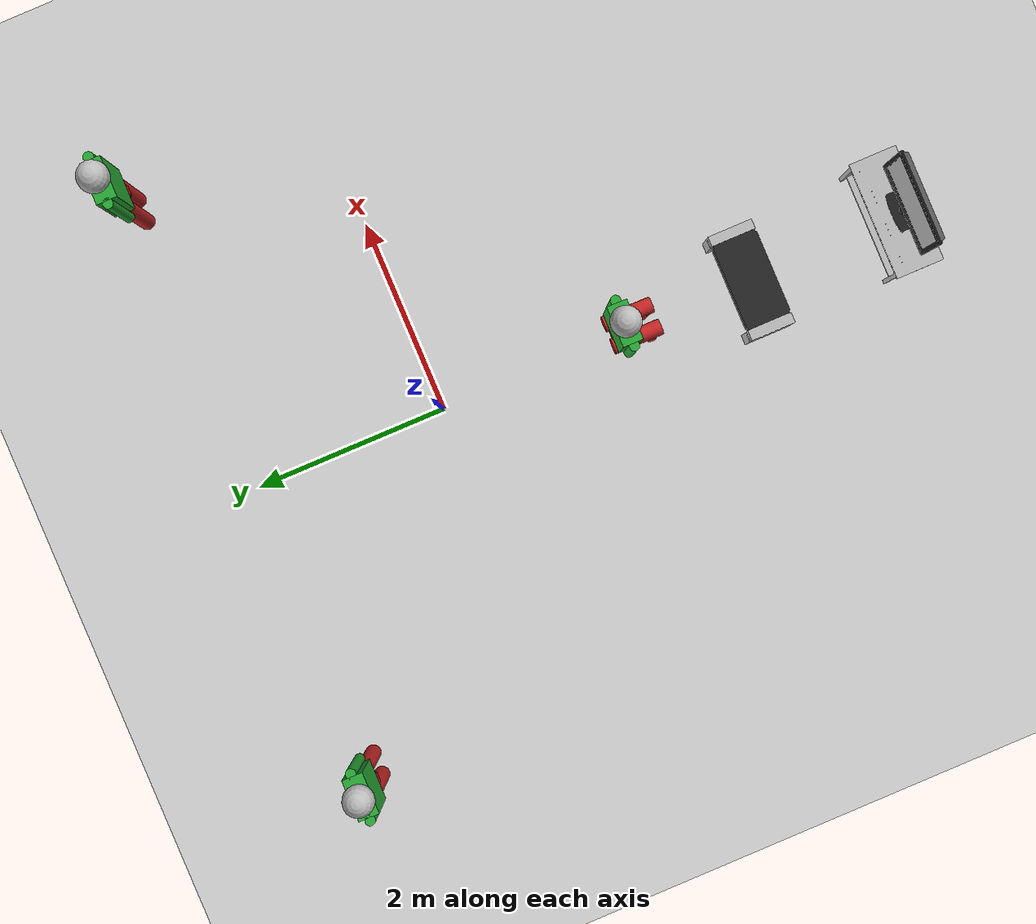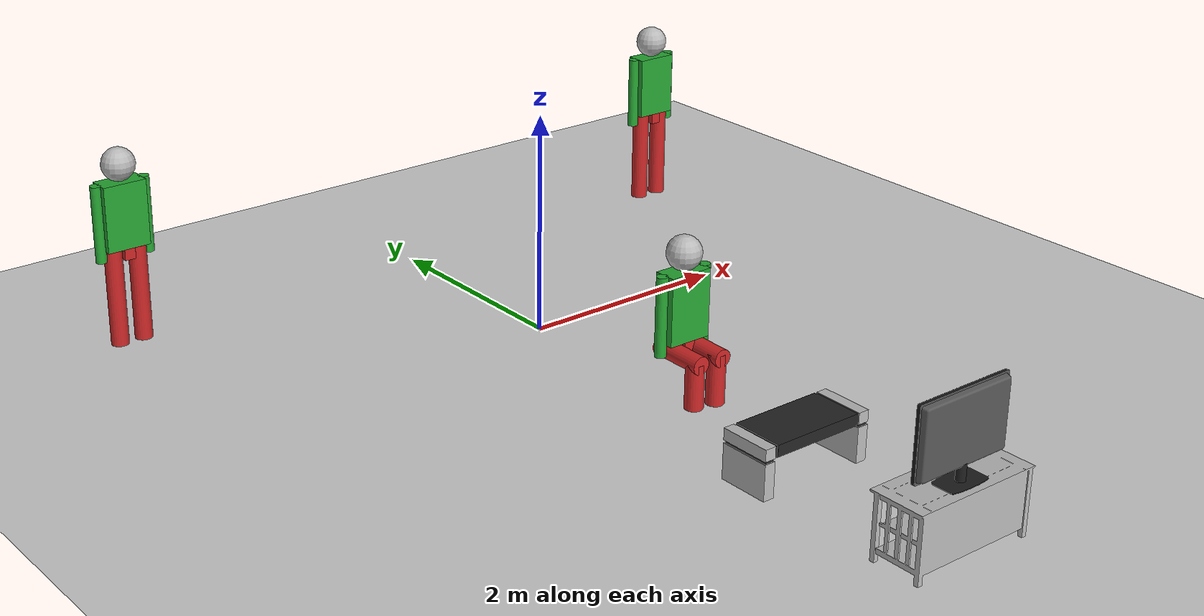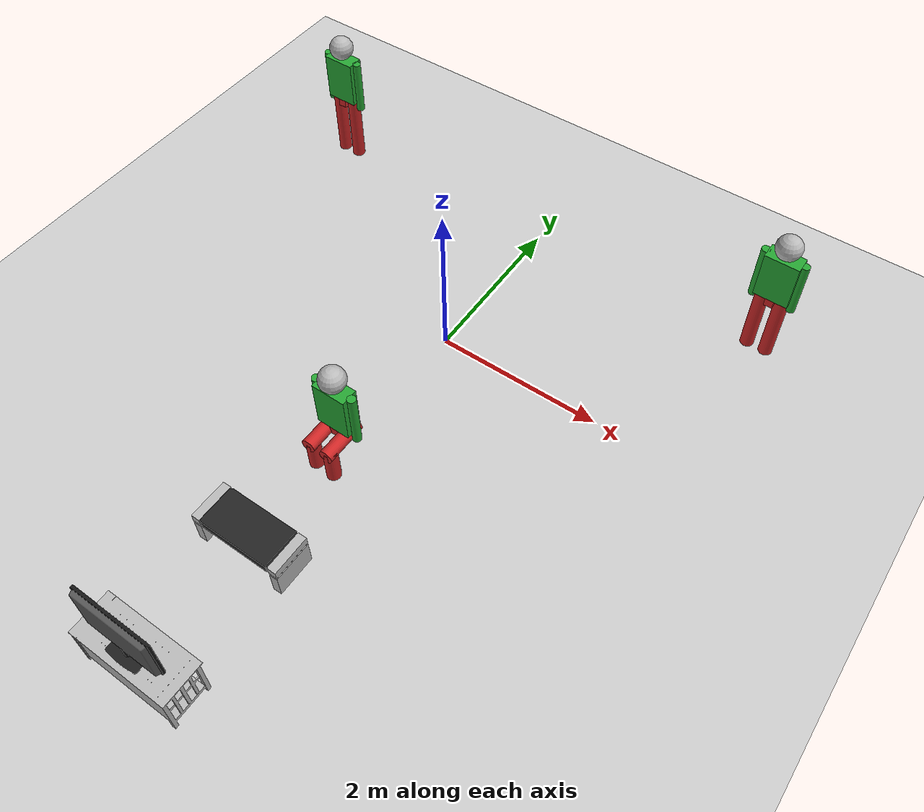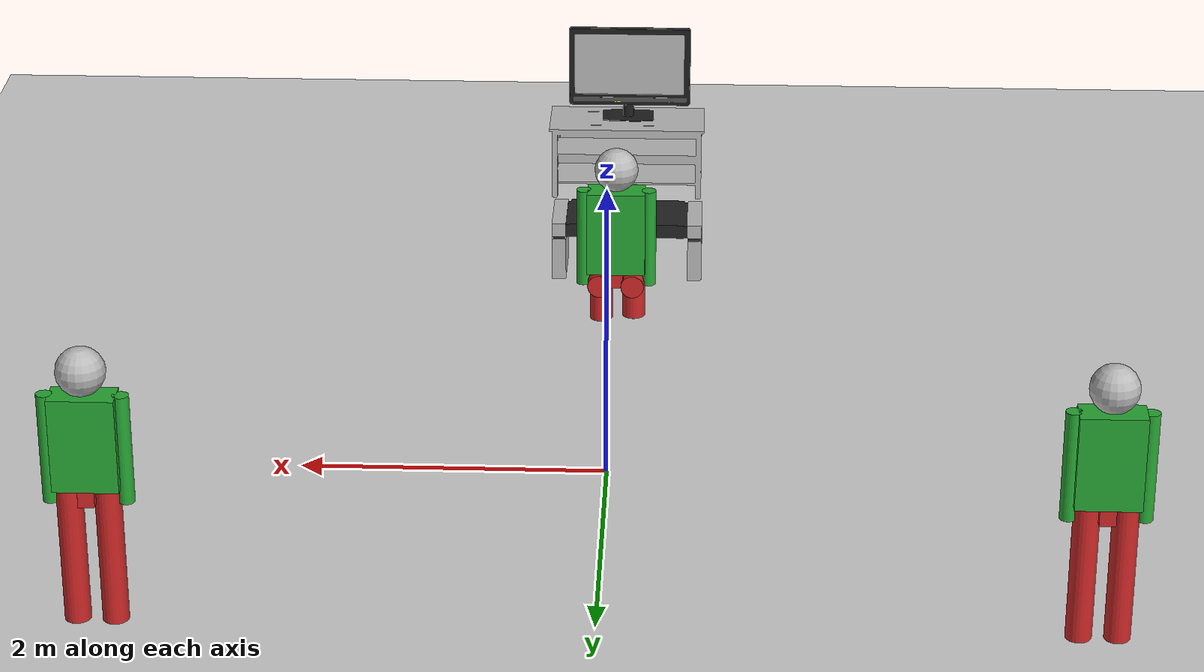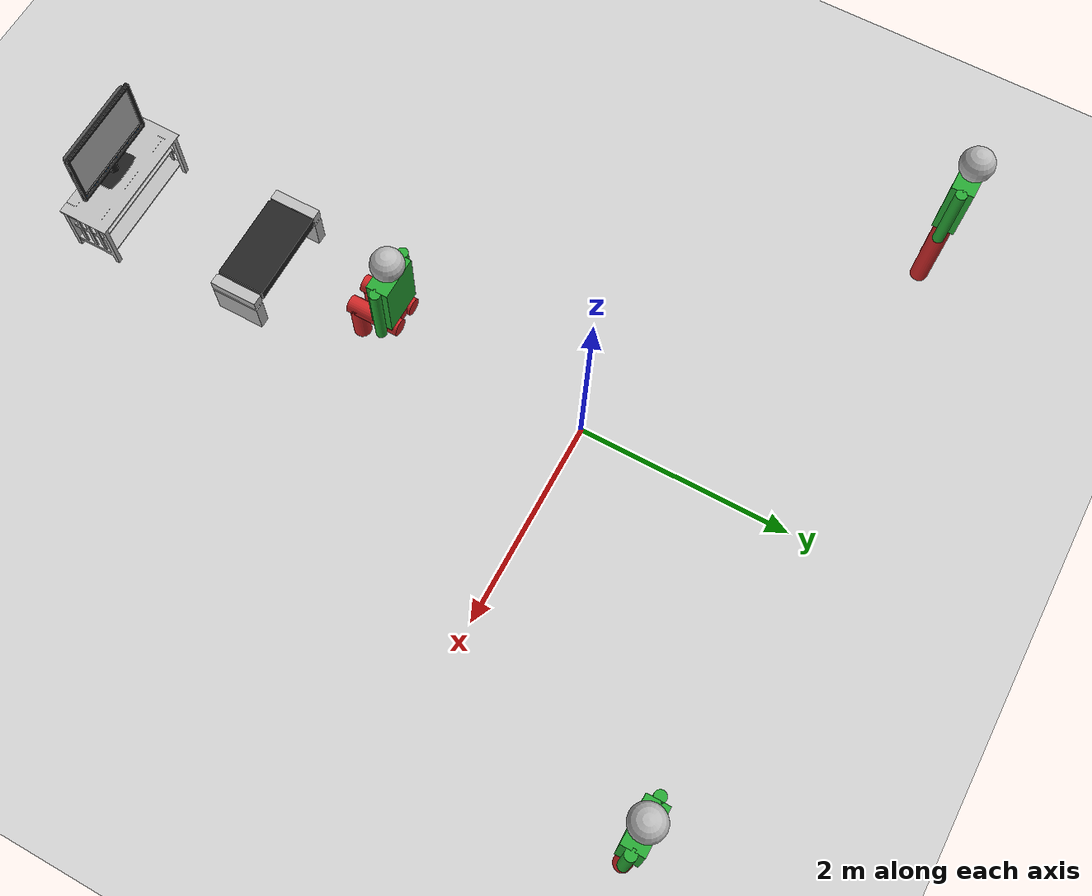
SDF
<sdf version="1.4">
 <world name="default">
  <include><uri>model://ground_plane</uri></include>
  <include><uri>model://sun</uri></include>
  <include>
   <pose>-3 2 0 0 0 -1.5757</pose>
   <uri>model://actor</uri>
   <name>Ze</name>
   <plugin name="ze_control" filename="libze_control_lib.so"/>
  </include>
  <include>
   <pose>3 2 0 0 0 -1.5757</pose>
   <uri>model://actor</uri>
   <name>Manel</name>
   <plugin name="manel_control" filename="libmanel_control_lib.so"/>
  </include>
  <include><pose>0 -1.87 0.2 0 0 -1.5757</pose><uri>model://actor_siting</uri><name>Quim</name></include>
  <include><pose>0 -4.78 0 0 0 0</pose><uri>model://tv</uri></include>
  <include><pose>0 -3.25 0 0 0 0</pose><uri>model://coffee_table</uri></include>
 </world>
</sdf>

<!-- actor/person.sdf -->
<sdf version='1.4'>
  <model name="person">
    <static>false</static>
    <link name="person">
      <visual name="torso_top">
	<pose>0 0 1.2 0 0 0</pose>
	<geometry>
	  <box>
	    <size>0.2 0.4 0.6</size>
	  </box>
	</geometry>
	<material>
          <script>
            <uri>file://media/materials/scripts/gazebo.material</uri>
            <name>Gazebo/Green</name>
          </script>
        </material>
      </visual>
      <visual name="torso_bottom">
	<pose>0 0 0.85 0 0 0</pose>
	<geometry>
	  <box>
	    <size>0.2 0.1 0.1</size>
	  </box>
	</geometry>
	<material>
          <script>
            <uri>file://media/materials/scripts/gazebo.material</uri>
            <name>Gazebo/Red</name>
          </script>
        </material>
      </visual>
      <collision name="torso_top">
	<pose>0 0 1.2 0 0 0</pose>
	<geometry>
	  <box>
	    <size>0.2 0.4 0.6</size>
	  </box>
	</geometry>
      </collision>
      <collision name="torso_bottom">
	<pose>0 0 0.85 0 0 0</pose>
	<geometry>
	  <box>
	    <size>0.2 0.1 0.1</size>
	  </box>
	</geometry>
      </collision>

      <visual name="head">
	<pose>0 0 1.65 0 0 0</pose>
	<geometry>
	  <sphere>
	    <radius>0.15</radius>
	  </sphere>
	</geometry>
	<material>
          <script>
            <uri>file://media/materials/scripts/gazebo.material</uri>
	    <name>Gazebo/SmileyHappy</name>
          </script>
        </material>
      </visual>
      <collision name = "head">
	<pose>0 0 1.65 0 0 0</pose>
	<geometry>
	  <sphere>
	    <radius>0.15</radius>
	  </sphere>
	</geometry>
      </collision>

      <visual name="left_arm">
	<pose>0 0.225 1.15 0 0 0</pose>
	<geometry>
	  <cylinder>
	    <radius>0.05</radius>
	    <length>0.70</length>
	  </cylinder>
	</geometry>
	<material>
          <script>
            <uri>file://media/materials/scripts/gazebo.material</uri>
            <name>Gazebo/Green</name>
          </script>
        </material>
      </visual>
      <collision name="left_arm">
	<pose>0 0.225 1.15 0 0 0</pose>
	<geometry>
	  <cylinder>
	    <radius>0.05</radius>
	    <length>0.70</length>
	  </cylinder>
	</geometry>
      </collision>

      <visual name ="right_arm">
	<pose>0 -0.225 1.15 0 0 0</pose>
	<geometry>
	  <cylinder>
	    <radius>0.05</radius>
	    <length>0.70</length>
	  </cylinder>
	</geometry>
	<material>
          <script>
            <uri>file://media/materials/scripts/gazebo.material</uri>
            <name>Gazebo/Green</name>
          </script>
        </material>
      </visual>
      <collision name ="right_arm">
	<pose>0 -0.225 1.15 0 0 0</pose>
	<geometry>
	  <cylinder>
	    <radius>0.05</radius>
	    <length>0.70</length>
	  </cylinder>
	</geometry>
      </collision>

      <visual name ="left_leg">
	<pose>0 0.115 0.445 0 0 0</pose>
	<geometry>
	  <cylinder>
	    <radius>0.08</radius>
	    <length>0.89</length>
	  </cylinder>
	</geometry>
	<material>
          <script>
            <uri>file://media/materials/scripts/gazebo.material</uri>
            <name>Gazebo/Red</name>
          </script>
        </material>
      </visual>
      <collision name ="left_leg">
	<pose>0 0.115 0.445 0 0 0</pose>
	<geometry>
	  <cylinder>
	    <radius>0.08</radius>
	    <length>0.89</length>
	  </cylinder>
	</geometry>
      </collision>

      <visual name="right_leg">
	<pose>0 -0.115 0.445 0 0 0</pose>
	<geometry>
	  <cylinder>
	    <radius>0.08</radius>
	    <length>0.89</length>
	  </cylinder>
	</geometry>
	<material>
          <script>
            <uri>file://media/materials/scripts/gazebo.material</uri>
            <name>Gazebo/Red</name>
          </script>
        </material>
      </visual>
      <collision name="right_leg">
	<pose>0 -0.115 0.445 0 0 0</pose>
	<geometry>
	  <cylinder>
	    <radius>0.08</radius>
	    <length>0.89</length>
	  </cylinder>
	</geometry>
      </collision>
    </link>
  </model>
</sdf>

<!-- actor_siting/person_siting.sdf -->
<sdf version='1.4'>
  <model name="person_siting">
    <static>true</static>
    <link name="person_siting">
      <visual name="torso_top">
	<pose>0 0 0.7 0 0 0</pose>
	<geometry>
	  <box>
	    <size>0.2 0.4 0.6</size>
	  </box>
	</geometry>
	<material>
          <script>
            <uri>file://media/materials/scripts/gazebo.material</uri>
            <name>Gazebo/Green</name>
          </script>
        </material>
      </visual>
      <visual name="torso_bottom">
	<pose>0 0 0.35 0 0 0</pose>
	<geometry>
	  <box>
	    <size>0.2 0.1 0.1</size>
	  </box>
	</geometry>
	<material>
          <script>
            <uri>file://media/materials/scripts/gazebo.material</uri>
            <name>Gazebo/Red</name>
          </script>
        </material>
      </visual>
      <collision name="torso_top">
	<pose>0 0 0.7 0 0 0</pose>
	<geometry>
	  <box>
	    <size>0.2 0.4 0.6</size>
	  </box>
	</geometry>
      </collision>
      <collision name="torso_bottom">
	<pose>0 0 0.35 0 0 0</pose>
	<geometry>
	  <box>
	    <size>0.2 0.1 0.1</size>
	  </box>
	</geometry>
      </collision>

      <visual name="head">
	<pose>0 0 1.15 0 0 0</pose>
	<geometry>
	  <sphere>
	    <radius>0.15</radius>
	  </sphere>
	</geometry>
	<material>
          <script>
            <uri>file://media/materials/scripts/gazebo.material</uri>
            <name>Gazebo/SmileyHappy</name>
          </script>
        </material>
      </visual>
      <collision name = "head">
	<pose>0 0 1.15 0 0 0</pose>
	<geometry>
	  <sphere>
	    <radius>0.15</radius>
	  </sphere>
	</geometry>
      </collision>

      <visual name="left_arm">
	<pose>0 0.225 0.65 0 0 0</pose>
	<geometry>
	  <cylinder>
	    <radius>0.05</radius>
	    <length>0.70</length>
	  </cylinder>
	</geometry>
	<material>
          <script>
            <uri>file://media/materials/scripts/gazebo.material</uri>
            <name>Gazebo/Green</name>
          </script>
        </material>
      </visual>
      <collision name="left_arm">
	<pose>0 0.225 0.65 0 0 0</pose>
	<geometry>
	  <cylinder>
	    <radius>0.05</radius>
	    <length>0.70</length>
	  </cylinder>
	</geometry>
      </collision>

      <visual name ="right_arm">
	<pose>0 -0.225 0.65 0 0 0</pose>
	<geometry>
	  <cylinder>
	    <radius>0.05</radius>
	    <length>0.70</length>
	  </cylinder>
	</geometry>
	<material>
          <script>
            <uri>file://media/materials/scripts/gazebo.material</uri>
            <name>Gazebo/Green</name>
          </script>
        </material>
      </visual>
      <collision name ="right_arm">
	<pose>0 -0.225 0.65 0 0 0</pose>
	<geometry>
	  <cylinder>
	    <radius>0.05</radius>
	    <length>0.70</length>
	  </cylinder>
	</geometry>
      </collision>

      <visual name ="left_leg1">
	<pose>0.125 0.115 0.32 0 1.5757 0</pose>
	<geometry>
	  <cylinder>
	    <radius>0.08</radius>
	    <length>0.50</length>
	  </cylinder>
	</geometry>
	<material>
          <script>
            <uri>file://media/materials/scripts/gazebo.material</uri>
            <name>Gazebo/Red</name>
          </script>
        </material>
      </visual>
      <visual name ="left_leg2">
	<pose>0.3 0.115 0.12 0 0 0</pose>
	<geometry>
	  <cylinder>
	    <radius>0.08</radius>
	    <length>0.450</length>
	  </cylinder>
	</geometry>
	<material>
          <script>
            <uri>file://media/materials/scripts/gazebo.material</uri>
            <name>Gazebo/Red</name>
          </script>
        </material>
      </visual>
      <collision name ="left_leg1">
	<pose>0.125 0.115 0.32 0 1.5757 0</pose>
	<geometry>
	  <cylinder>
	    <radius>0.08</radius>
	    <length>0.50</length>
	  </cylinder>
	</geometry>
      </collision>
      <collision name ="left_leg2">
	<pose>0.3 0.115 0.12 0 0 0</pose>
	<geometry>
	  <cylinder>
	    <radius>0.08</radius>
	    <length>0.40</length>
	  </cylinder>
	</geometry>
      </collision>

      <visual name ="right_leg1">
	<pose>0.125 -0.115 0.32 0 1.5757 0</pose>
	<geometry>
	  <cylinder>
	    <radius>0.08</radius>
	    <length>0.50</length>
	  </cylinder>
	</geometry>
	<material>
          <script>
            <uri>file://media/materials/scripts/gazebo.material</uri>
            <name>Gazebo/Red</name>
          </script>
        </material>
      </visual>
      <visual name ="right_leg2">
	<pose>0.3 -0.115 0.12 0 0 0</pose>
	<geometry>
	  <cylinder>
	    <radius>0.08</radius>
	    <length>0.40</length>
	  </cylinder>
	</geometry>
	<material>
          <script>
            <uri>file://media/materials/scripts/gazebo.material</uri>
            <name>Gazebo/Red</name>
          </script>
        </material>
      </visual>
      <collision name ="right_leg1">
	<pose>0.125 -0.115 0.32 0 1.5757 0</pose>
	<geometry>
	  <cylinder>
	    <radius>0.08</radius>
	    <length>0.5</length>
	  </cylinder>
	</geometry>
      </collision>
      <collision name ="right_leg2">
	<pose>0.3 -0.115 0.12 0 0 0</pose>
	<geometry>
	  <cylinder>
	    <radius>0.08</radius>
	    <length>0.4</length>
	  </cylinder>
	</geometry>
      </collision>
    </link>
  </model>
</sdf>

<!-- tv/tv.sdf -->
<sdf version='1.4'>
  <model name="tv">
    <link name="tv">
      <visual name="tv">
	<geometry>
	  <mesh><uri>model://tv/meshes/tv.dae</uri></mesh>
        </geometry>
      </visual>
      <collision name="tv">
	<pose>0 0 0.67 0 0 0</pose>
	<geometry>
	  <box>
	    <size>1.19 0.44 1.34</size>
	  </box>
        </geometry>
      </collision>
    </link>
  </model>
</sdf>

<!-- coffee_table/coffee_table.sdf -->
<sdf version='1.4'>
  <model name="coffee_table">
    <link name="coffee_table">
      <visual name="coffee_table">
	<geometry>
	  <mesh><uri>model://coffee_table/meshes/coffee_table.dae</uri></mesh>
        </geometry>
      </visual>
      <collision name="coffee_table">
	<pose>0 0 0.22 0 0 0</pose>
	<geometry>
	  <box>
	    <size>1.1 0.46 0.44</size>
	  </box>
        </geometry>
      </collision>
    </link>
  </model>
</sdf>
